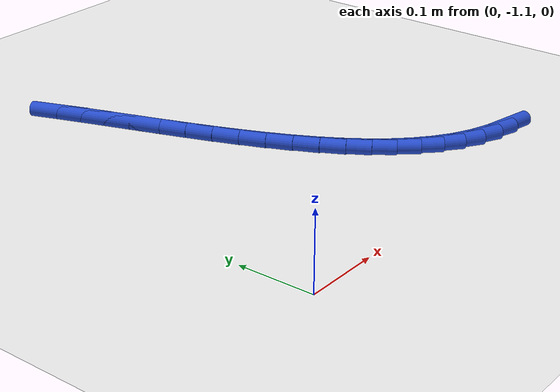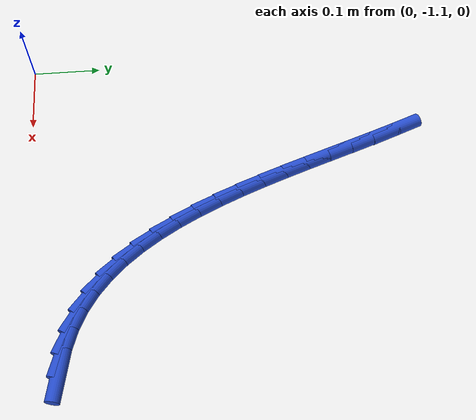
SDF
<sdf version="1.6">
 <world name="default">
  <model name="ground_plane">
   <static>1</static>
   <link name="link">
    <collision name="collision">
     <geometry><plane><normal>0 0 1</normal><size>100 100</size></plane></geometry>
     <surface><friction><ode><mu>100</mu><mu2>50</mu2></ode></friction></surface>
    </collision>
    <visual name="visual">
     <cast_shadows>0</cast_shadows>
     <geometry><plane><normal>0 0 1</normal><size>100 100</size></plane></geometry>
     <material>
      <script><uri>file://media/materials/scripts/gazebo.material</uri><name>Gazebo/WhiteGlow</name></script>
     </material>
    </visual>
   </link>
  </model>
  <model name="line">
   <link name="link_203">
    <pose>0.48277317034577416 -1.0518691804886409 0.01 0 1.57 -0.2037294465366215</pose>
    <collision name="collision">
     <geometry><cylinder><radius>0.01</radius><length>0.08</length></cylinder></geometry>
    </collision>
    <visual name="visual">
     <material>
      <script><name>Gazebo/Blue</name><uri>file://media/materials/scripts/gazebo.material</uri></script>
     </material>
     <geometry><cylinder><radius>0.01</radius><length>0.08</length></cylinder></geometry>
    </visual>
   </link>
   <link name="link_204">
    <pose>0.4535811952792884 -1.045838244385129 0.01 0 1.57 -0.3249159183908779</pose>
    <collision name="collision">
     <geometry><cylinder><radius>0.01</radius><length>0.08</length></cylinder></geometry>
    </collision>
    <visual name="visual">
     <material>
      <script><name>Gazebo/Blue</name><uri>file://media/materials/scripts/gazebo.material</uri></script>
     </material>
     <geometry><cylinder><radius>0.01</radius><length>0.08</length></cylinder></geometry>
    </visual>
   </link>
   <link name="link_205">
    <pose>0.42625191171445065 -1.0366322623172461 0.01 0 1.57 -0.45990236588596783</pose>
    <collision name="collision">
     <geometry><cylinder><radius>0.01</radius><length>0.08</length></cylinder></geometry>
    </collision>
    <visual name="visual">
     <material>
      <script><name>Gazebo/Blue</name><uri>file://media/materials/scripts/gazebo.material</uri></script>
     </material>
     <geometry><cylinder><radius>0.01</radius><length>0.08</length></cylinder></geometry>
    </visual>
   </link>
   <link name="link_206">
    <pose>0.4009105939765935 -1.0240800189991937 0.01 0 1.57 -0.5891779976927768</pose>
    <collision name="collision">
     <geometry><cylinder><radius>0.01</radius><length>0.08</length></cylinder></geometry>
    </collision>
    <visual name="visual">
     <material>
      <script><name>Gazebo/Blue</name><uri>file://media/materials/scripts/gazebo.material</uri></script>
     </material>
     <geometry><cylinder><radius>0.01</radius><length>0.08</length></cylinder></geometry>
    </visual>
   </link>
   <link name="link_207">
    <pose>0.377438720838985 -1.0083922219569623 0.01 0 1.57 -0.7072936158489314</pose>
    <collision name="collision">
     <geometry><cylinder><radius>0.01</radius><length>0.08</length></cylinder></geometry>
    </collision>
    <visual name="visual">
     <material>
      <script><name>Gazebo/Blue</name><uri>file://media/materials/scripts/gazebo.material</uri></script>
     </material>
     <geometry><cylinder><radius>0.01</radius><length>0.08</length></cylinder></geometry>
    </visual>
   </link>
   <link name="link_208">
    <pose>0.3556992518763137 -0.9898085903385064 0.01 0 1.57 -0.8118670852505009</pose>
    <collision name="collision">
     <geometry><cylinder><radius>0.01</radius><length>0.08</length></cylinder></geometry>
    </collision>
    <visual name="visual">
     <material>
      <script><name>Gazebo/Blue</name><uri>file://media/materials/scripts/gazebo.material</uri></script>
     </material>
     <geometry><cylinder><radius>0.01</radius><length>0.08</length></cylinder></geometry>
    </visual>
   </link>
   <link name="link_209">
    <pose>0.3355551466632698 -0.9685688432917826 0.01 0 1.57 -0.9022496896178486</pose>
    <collision name="collision">
     <geometry><cylinder><radius>0.01</radius><length>0.08</length></cylinder></geometry>
    </collision>
    <visual name="visual">
     <material>
      <script><name>Gazebo/Blue</name><uri>file://media/materials/scripts/gazebo.material</uri></script>
     </material>
     <geometry><cylinder><radius>0.01</radius><length>0.08</length></cylinder></geometry>
    </visual>
   </link>
   <link name="link_210">
    <pose>0.3168693647745416 -0.944912699964745 0.01 0 1.57 -0.978981340966125</pose>
    <collision name="collision">
     <geometry><cylinder><radius>0.01</radius><length>0.08</length></cylinder></geometry>
    </collision>
    <visual name="visual">
     <material>
      <script><name>Gazebo/Blue</name><uri>file://media/materials/scripts/gazebo.material</uri></script>
     </material>
     <geometry><cylinder><radius>0.01</radius><length>0.08</length></cylinder></geometry>
    </visual>
   </link>
   <link name="link_211">
    <pose>0.29950486578481844 -0.9190798795053495 0.01 0 1.57 -1.0432266293892067</pose>
    <collision name="collision">
     <geometry><cylinder><radius>0.01</radius><length>0.08</length></cylinder></geometry>
    </collision>
    <visual name="visual">
     <material>
      <script><name>Gazebo/Blue</name><uri>file://media/materials/scripts/gazebo.material</uri></script>
     </material>
     <geometry><cylinder><radius>0.01</radius><length>0.08</length></cylinder></geometry>
    </visual>
   </link>
   <link name="link_212">
    <pose>0.2833246092687892 -0.8913101010615513 0.01 0 1.57 -1.0963603816561558</pose>
    <collision name="collision">
     <geometry><cylinder><radius>0.01</radius><length>0.08</length></cylinder></geometry>
    </collision>
    <visual name="visual">
     <material>
      <script><name>Gazebo/Blue</name><uri>file://media/materials/scripts/gazebo.material</uri></script>
     </material>
     <geometry><cylinder><radius>0.01</radius><length>0.08</length></cylinder></geometry>
    </visual>
   </link>
   <link name="link_213">
    <pose>0.26819155480114293 -0.8618430837813054 0.01 0 1.57 -1.1397214864876135</pose>
    <collision name="collision">
     <geometry><cylinder><radius>0.01</radius><length>0.08</length></cylinder></geometry>
    </collision>
    <visual name="visual">
     <material>
      <script><name>Gazebo/Blue</name><uri>file://media/materials/scripts/gazebo.material</uri></script>
     </material>
     <geometry><cylinder><radius>0.01</radius><length>0.08</length></cylinder></geometry>
    </visual>
   </link>
   <link name="link_214">
    <pose>0.25396866195656875 -0.8309185468125669 0.01 0 1.57 -1.1744916598255406</pose>
    <collision name="collision">
     <geometry><cylinder><radius>0.01</radius><length>0.08</length></cylinder></geometry>
    </collision>
    <visual name="visual">
     <material>
      <script><name>Gazebo/Blue</name><uri>file://media/materials/scripts/gazebo.material</uri></script>
     </material>
     <geometry><cylinder><radius>0.01</radius><length>0.08</length></cylinder></geometry>
    </visual>
   </link>
   <link name="link_215">
    <pose>0.24051889030975543 -0.7987762093032907 0.01 0 1.57 -1.2016495477518856</pose>
    <collision name="collision">
     <geometry><cylinder><radius>0.01</radius><length>0.08</length></cylinder></geometry>
    </collision>
    <visual name="visual">
     <material>
      <script><name>Gazebo/Blue</name><uri>file://media/materials/scripts/gazebo.material</uri></script>
     </material>
     <geometry><cylinder><radius>0.01</radius><length>0.08</length></cylinder></geometry>
    </visual>
   </link>
   <link name="link_216">
    <pose>0.2277051994353927 -0.765655790401434 0.01 0 1.57 -1.2219635947480312</pose>
    <collision name="collision">
     <geometry><cylinder><radius>0.01</radius><length>0.08</length></cylinder></geometry>
    </collision>
    <visual name="visual">
     <material>
      <script><name>Gazebo/Blue</name><uri>file://media/materials/scripts/gazebo.material</uri></script>
     </material>
     <geometry><cylinder><radius>0.01</radius><length>0.08</length></cylinder></geometry>
    </visual>
   </link>
   <link name="link_217">
    <pose>0.2153905489081692 -0.7317970092549506 0.01 0 1.57 -1.2360012737003465</pose>
    <collision name="collision">
     <geometry><cylinder><radius>0.01</radius><length>0.08</length></cylinder></geometry>
    </collision>
    <visual name="visual">
     <material>
      <script><name>Gazebo/Blue</name><uri>file://media/materials/scripts/gazebo.material</uri></script>
     </material>
     <geometry><cylinder><radius>0.01</radius><length>0.08</length></cylinder></geometry>
    </visual>
   </link>
   <link name="link_218">
    <pose>0.20343789830277403 -0.697439585011796 0.01 0 1.57 -1.2441423583211382</pose>
    <collision name="collision">
     <geometry><cylinder><radius>0.01</radius><length>0.08</length></cylinder></geometry>
    </collision>
    <visual name="visual">
     <material>
      <script><name>Gazebo/Blue</name><uri>file://media/materials/scripts/gazebo.material</uri></script>
     </material>
     <geometry><cylinder><radius>0.01</radius><length>0.08</length></cylinder></geometry>
    </visual>
   </link>
   <link name="link_219">
    <pose>0.19171020719389628 -0.6628232368199254 0.01 0 1.57 -1.2465899410288235</pose>
    <collision name="collision">
     <geometry><cylinder><radius>0.01</radius><length>0.08</length></cylinder></geometry>
    </collision>
    <visual name="visual">
     <material>
      <script><name>Gazebo/Blue</name><uri>file://media/materials/scripts/gazebo.material</uri></script>
     </material>
     <geometry><cylinder><radius>0.01</radius><length>0.08</length></cylinder></geometry>
    </visual>
   </link>
   <link name="link_220">
    <pose>0.18007043515622498 -0.6281876838272942 0.01 0 1.57 -1.243376131607126</pose>
    <collision name="collision">
     <geometry><cylinder><radius>0.01</radius><length>0.08</length></cylinder></geometry>
    </collision>
    <visual name="visual">
     <material>
      <script><name>Gazebo/Blue</name><uri>file://media/materials/scripts/gazebo.material</uri></script>
     </material>
     <geometry><cylinder><radius>0.01</radius><length>0.08</length></cylinder></geometry>
    </visual>
   </link>
   <link name="link_221">
    <pose>0.16838154176444922 -0.5937726451818577 0.01 0 1.57 -1.2343609819274268</pose>
    <collision name="collision">
     <geometry><cylinder><radius>0.01</radius><length>0.08</length></cylinder></geometry>
    </collision>
    <visual name="visual">
     <material>
      <script><name>Gazebo/Blue</name><uri>file://media/materials/scripts/gazebo.material</uri></script>
     </material>
     <geometry><cylinder><radius>0.01</radius><length>0.08</length></cylinder></geometry>
    </visual>
   </link>
   <link name="link_222">
    <pose>0.15650648659325808 -0.559817840031571 0.01 0 1.57 -1.2192240011337196</pose>
    <collision name="collision">
     <geometry><cylinder><radius>0.01</radius><length>0.08</length></cylinder></geometry>
    </collision>
    <visual name="visual">
     <material>
      <script><name>Gazebo/Blue</name><uri>file://media/materials/scripts/gazebo.material</uri></script>
     </material>
     <geometry><cylinder><radius>0.01</radius><length>0.08</length></cylinder></geometry>
    </visual>
   </link>
  </model>
 </world>
</sdf>
